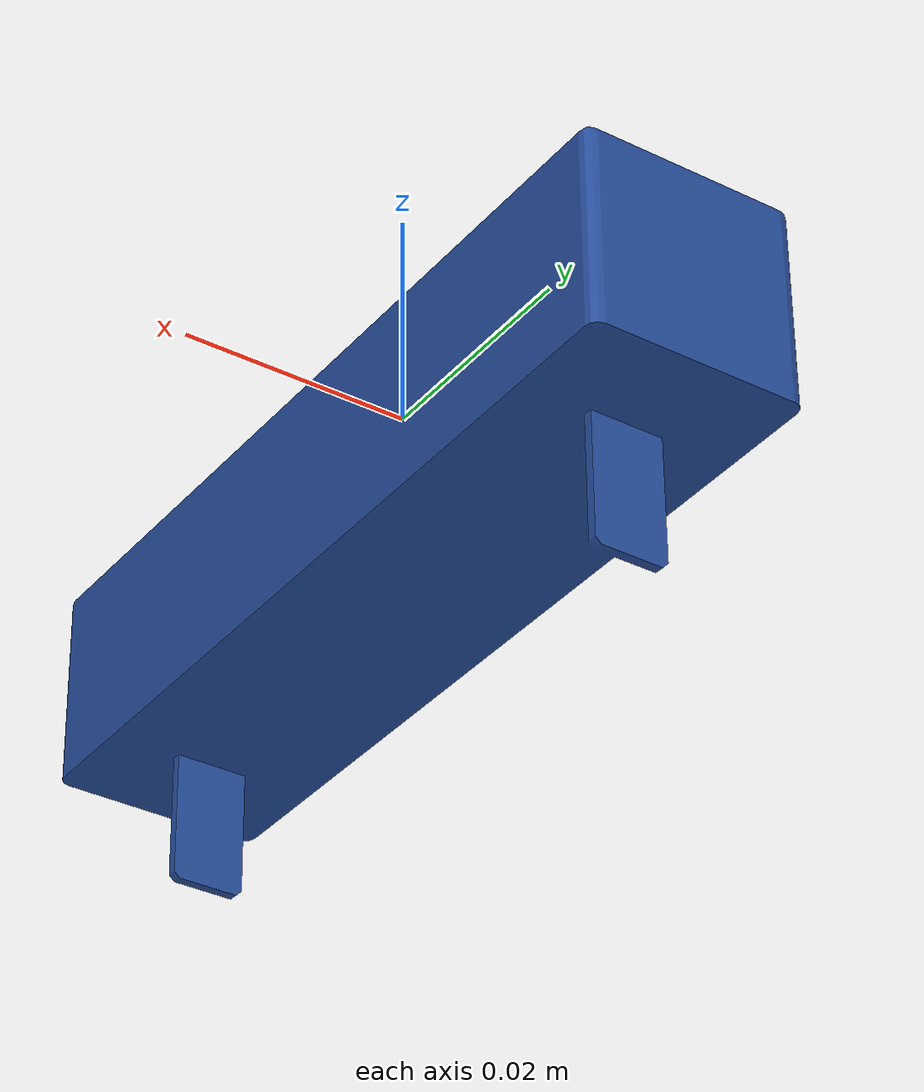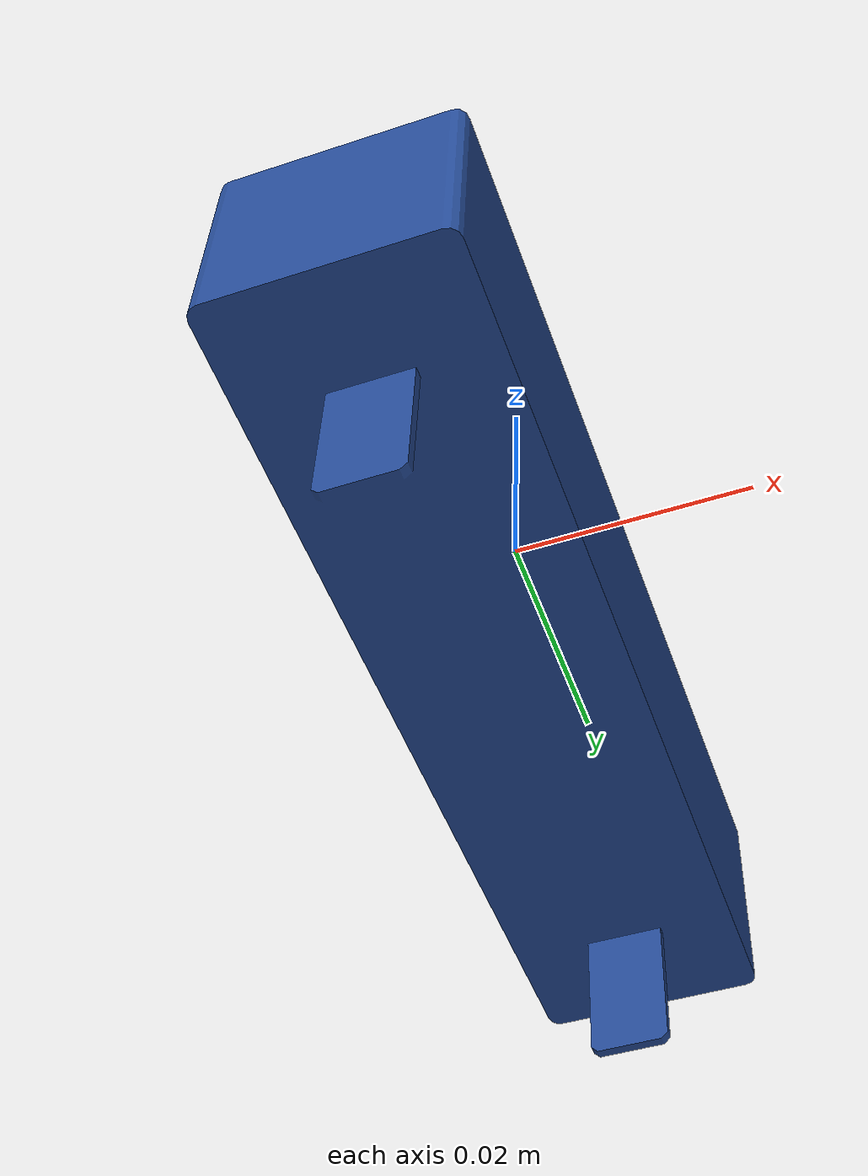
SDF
<?xml version="1.0" ?>
<sdf version="1.6">
  <model name="relay_part_03">
    <link name="link">
      <gravity>false</gravity>
      <visual name="visual">
        <geometry>
          <mesh>
            <uri>file:///root/workcell_ws_classic/src/descriptions/meshes/feeder/kiro/Relay_Part_03.STL</uri>
            <scale>1 1 1</scale>
          </mesh>
        </geometry>
        <material>
          <!-- Relay Part 03: metallic blue -->
          <ambient>0.1 0.15 0.3 1</ambient>
          <diffuse>0.15 0.3 0.6 1</diffuse>
          <specular>0.3 0.3 0.3 1</specular>
          <emissive>0 0 0 1</emissive>
        </material>
      </visual>

        <inertial>
          <mass>0.5</mass>
          <inertia>
            <ixx>0.001</ixx>
            <ixy>0</ixy>
            <ixz>0</ixz>
            <iyy>0.001</iyy>
            <iyz>0</iyz>
            <izz>0.001</izz>
          </inertia>
        </inertial>
    </link>
  </model>
</sdf>
